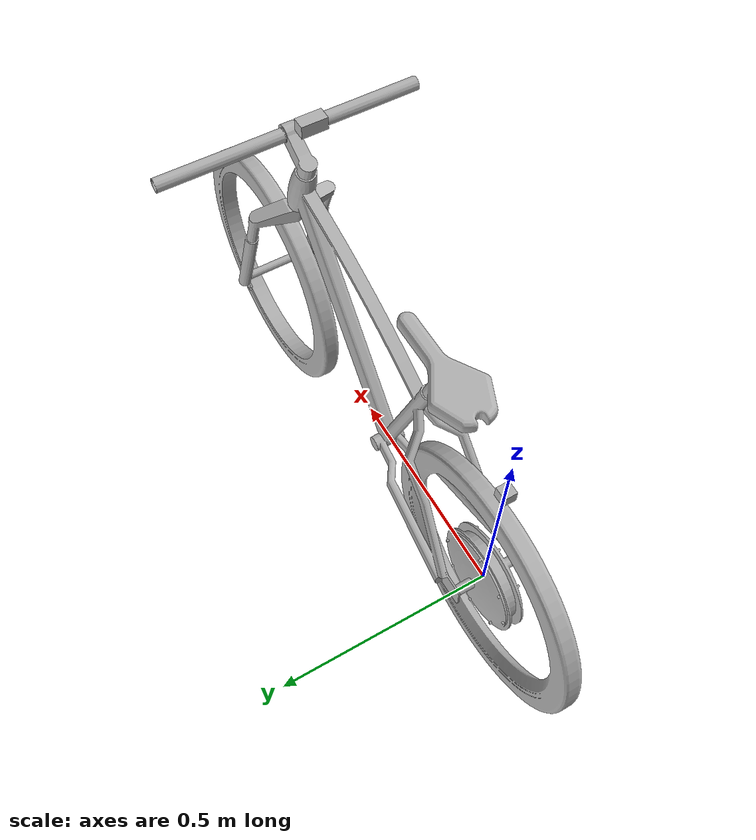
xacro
<?xml version="1.0" ?>
<robot name="bicycle" xmlns:xacro="http://www.ros.org/wiki/xacro">

  <xacro:include filename="$(find bicycle_description)/urdf/materials.xacro" />
  <xacro:include filename="$(find bicycle_description)/urdf/bicycle.trans" />
  <xacro:include filename="$(find bicycle_description)/urdf/bicycle.gazebo" />
  <xacro:include filename="$(find bicycle_description)/urdf/sensors.xacro" />
  <xacro:include filename="$(find bicycle_description)/urdf/sensors.gazebo" />

  <link name="base_link">
  </link>

  <joint name="base" type="fixed">
    <origin xyz="0.84811 0.0 0.267533" rpy="0 0 0"/>
    <parent link="base_link"/>
    <child link="frame"/>
  </joint>

  <link name="back_wheel_1">
    <inertial>
      <origin xyz="-4.665051260843711e-07 0.07999999999999871 -9.474190248992542e-08" rpy="0 0 0"/>
      <mass value="7.17827052953697"/>
      <inertia ixx="0.226393" iyy="0.449891" izz="0.226393" ixy="-0.0" iyz="0.0" ixz="0.0"/>
    </inertial>
    <visual>
      <origin xyz="0.84811 0.08 0.267533" rpy="0 0 0"/>
      <geometry>
        <mesh filename="package://bicycle_description/meshes/back_wheel_1.stl" scale="0.001 0.001 0.001"/>
      </geometry>
      <material name="silver"/>
    </visual>
    <collision>
      <origin xyz="0.84811 0.08 0.267533" rpy="0 0 0"/>
      <geometry>
        <mesh filename="package://bicycle_description/meshes/back_wheel_1.stl" scale="0.001 0.001 0.001"/>
      </geometry>
    </collision>
  </link>

  <link name="frame">
    <inertial>
      <origin xyz="-0.4180874824874772 -1.8521219476316816e-08 0.004402431246678269" rpy="0 0 0"/>
      <mass value="3.4649372633286384"/>
      <inertia ixx="0.126115" iyy="0.297787" izz="0.179524" ixy="0.0" iyz="-0.0" ixz="-0.045126"/>
    </inertial>
    <visual>
      <origin xyz="0 0 0" rpy="0 0 0"/>
      <geometry>
        <mesh filename="package://bicycle_description/meshes/frame.stl" scale="0.001 0.001 0.001"/>
      </geometry>
      <material name="silver"/>
    </visual>
    <collision>
      <origin xyz="0 0 0" rpy="0 0 0"/>
      <geometry>
        <mesh filename="package://bicycle_description/meshes/frame.stl" scale="0.001 0.001 0.001"/>
      </geometry>
    </collision>
  </link>

  <link name="front_wheel_1">
    <inertial>
      <origin xyz="-3.1036681114038345e-08 0.08399999999999737 -9.474189649472109e-08" rpy="0 0 0"/>
      <mass value="4.70339303585743"/>
      <inertia ixx="0.206376" iyy="0.410961" izz="0.206376" ixy="-0.0" iyz="0.0" ixz="-0.0"/>
    </inertial>
    <visual>
      <origin xyz="-0.175163 0.084 0.267533" rpy="0 0 0"/>
      <geometry>
        <mesh filename="package://bicycle_description/meshes/front_wheel_1.stl" scale="0.001 0.001 0.001"/>
      </geometry>
      <material name="silver"/>
    </visual>
    <collision>
      <origin xyz="-0.175163 0.084 0.267533" rpy="0 0 0"/>
      <geometry>
        <mesh filename="package://bicycle_description/meshes/front_wheel_1.stl" scale="0.001 0.001 0.001"/>
      </geometry>
    </collision>
  </link>

  <link name="front_fork_1">
    <inertial>
      <origin xyz="0.09904830883535634 -6.450152857772817e-14 -0.20717436570824999" rpy="0 0 0"/>
      <mass value="1.30177606552459"/>
      <inertia ixx="0.053195" iyy="0.047325" izz="0.015452" ixy="-0.0" iyz="-0.0" ixz="0.012899"/>
    </inertial>
    <visual>
      <origin xyz="0.061665 0.0 -0.286333" rpy="0 0 0"/>
      <geometry>
        <mesh filename="package://bicycle_description/meshes/front_fork_1.stl" scale="0.001 0.001 0.001"/>
      </geometry>
      <material name="silver"/>
    </visual>
    <collision>
      <origin xyz="0.061665 0.0 -0.286333" rpy="0 0 0"/>
      <geometry>
        <mesh filename="package://bicycle_description/meshes/front_fork_1.stl" scale="0.001 0.001 0.001"/>
      </geometry>
    </collision>
  </link>

  <joint name="Rev2" type="continuous">
    <origin xyz="-0.061665 0.0 0.286333" rpy="0 0 0"/>
    <parent link="frame"/>
    <child link="front_fork_1"/>
    <axis xyz="0.34202 0.0 -0.939693"/>
  </joint>

  <joint name="Rev1" type="continuous">
    <origin xyz="0.236828 -0.084 -0.553866" rpy="0 0 0"/>
    <parent link="front_fork_1"/>
    <child link="front_wheel_1"/>
    <dynamics damping="0.0" friction="0.0"/>
    <axis xyz="0.0 -1.0 0.0"/>
  </joint>

  <joint name="Rev3" type="continuous">
    <origin xyz="-0.84811 -0.08 -0.267533" rpy="0 0 0"/>
    <parent link="frame"/>
    <child link="back_wheel_1"/>
    <axis xyz="-0.0 1.0 0.0"/>
  </joint>

</robot>

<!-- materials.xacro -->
<robot name="bicycle" xmlns:xacro="http://www.ros.org/wiki/xacro" >

<material name="silver">
  <color rgba="0.700 0.700 0.700 1.000"/>
</material>

</robot>

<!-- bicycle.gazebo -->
<robot name="bicycle" xmlns:xacro="http://www.ros.org/wiki/xacro" >

<xacro:property name="body_color" value="Gazebo/Silver" />

<gazebo>
  <plugin name="gazebo_ros_control" filename="libgazebo_ros_control.so"/>
</gazebo>

<gazebo>
  <plugin name="p3d_base_controller" filename="libgazebo_ros_p3d.so">
    <alwaysOn>true</alwaysOn>
    <updateRate>50.0</updateRate>
    <bodyName>base_link</bodyName>
    <topicName>/bike/odom</topicName>
    <gaussianNoise>0.01</gaussianNoise>
    <frameName>/map</frameName>
    <xyzOffsets>0 0 0</xyzOffsets>
    <rpyOffsets>0 0 0</rpyOffsets>
  </plugin>
</gazebo>

<gazebo reference="base_link">
  <material>${body_color}</material>
  <mu1>0.2</mu1>
  <mu2>0.2</mu2>
  <selfCollide>true</selfCollide>
  <gravity>true</gravity>
</gazebo>

<gazebo reference="front_wheel_1">
  <material>${body_color}</material>
  <mu1>0.2</mu1>
  <mu2>0.2</mu2>
  <selfCollide>true</selfCollide>
</gazebo>

<gazebo reference="front_fork_1">
  <material>${body_color}</material>
  <mu1>0.2</mu1>
  <mu2>0.2</mu2>
  <selfCollide>true</selfCollide>
</gazebo>

<gazebo reference="back_wheel_1">
  <material>${body_color}</material>
  <mu1>0.2</mu1>
  <mu2>0.2</mu2>
  <selfCollide>true</selfCollide>
</gazebo>

</robot>

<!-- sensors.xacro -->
<robot name="bicycle" xmlns:xacro="http://www.ros.org/wiki/xacro">

  <!-- IMU -->
  <link name="imu_link">
    <inertial>
      <mass value="1e-5" />
      <origin xyz="0 0 0" rpy="0 0 0"/>
      <inertia ixx="1e-6" ixy="0" ixz="0" iyy="1e-6" iyz="0" izz="1e-6" />
    </inertial>

    <visual>
      <origin xyz="0 0 0" rpy="0 0 0"/>
      <geometry>
    <box size="0.03 0.03 0.03"/>
      </geometry>
      <material name="silver"/>
    </visual>

    <collision>
      <origin xyz="0 0 0" rpy="0 0 0"/>
      <geometry>
        <box size="0.03 0.03 0.03"/>
      </geometry>
    </collision>
  </link>

  <joint name="imu_joint" type="fixed">
    <origin xyz="0 0 0.4" rpy="0 0 0"/>
    <parent link="base_link"/>
    <child link="imu_link"/>
  </joint>

  <!-- Camera -->
  <link name="camera_link">
    <inertial>
      <mass value="1e-5" />
      <origin xyz="0 0 0" rpy="0 0 0"/>
      <inertia ixx="1e-6" ixy="0" ixz="0" iyy="1e-6" iyz="0" izz="1e-6" />
    </inertial>

    <visual>
      <origin xyz="0 0 0" rpy="0 0 0"/>
      <geometry>
    <box size="0.03 0.06 0.03"/>
      </geometry>
      <material name="silver"/>
    </visual>

    <collision>
      <origin xyz="0 0 0" rpy="0 0 0"/>
      <geometry>
        <box size="0.03 0.06 0.03"/>
      </geometry>
    </collision>
  </link>

  <joint name="camera_joint" type="fixed">

    <origin xyz="-0.1 0 0.45" rpy="0 0 0"/>
    <parent link="frame"/>
    <child link="camera_link"/>
  </joint>

  <link name="camera_depth_link"></link>

  <joint name="camera_depth_joint" type="fixed">
    <origin xyz="0 0 0" rpy="${-3.14159/2} 0 ${-3.14159/2} "/>
    <parent link="camera_link"/>
    <child link="camera_depth_link"/>
  </joint>

</robot>
